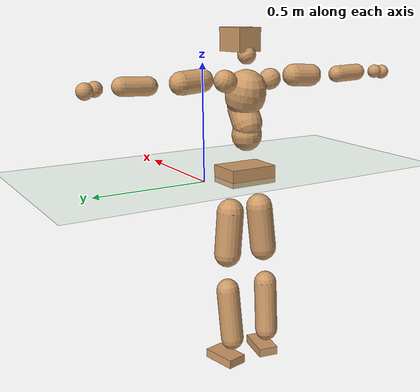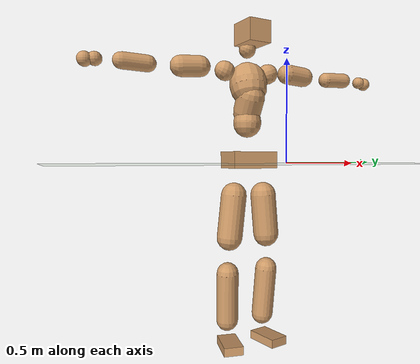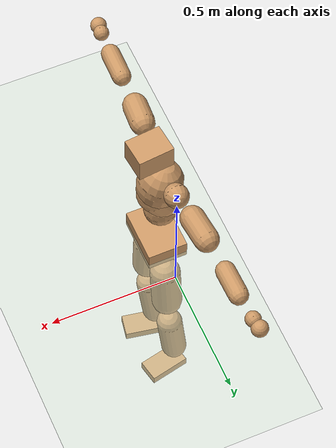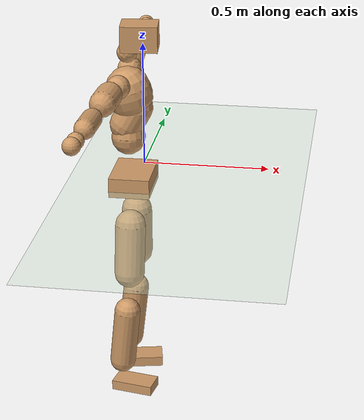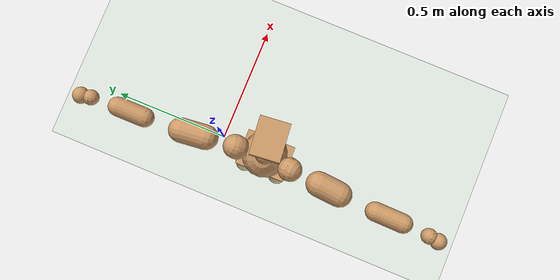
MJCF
<mujoco model="humanoid">
  <compiler coordinate="local" angle="radian"/>
  <default>
    <joint damping="0.0" armature="0.01" stiffness="0.0" limited="true"/>
    <geom conaffinity="1" condim="3" contype="7" margin="0.001" rgba="0.8 0.6 .4 1"/>
  </default>
  <asset>
    <texture type="skybox" builtin="gradient" rgb1=".4 .5 .6" rgb2="0 0 0" width="100" height="100"/>
    <texture builtin="flat" height="1278" mark="cross" markrgb="1 1 1" name="texgeom" random="0.01" rgb1="0.8 0.6 0.4" rgb2="0.8 0.6 0.4" type="cube" width="127"/>
    <texture builtin="checker" height="100" name="texplane" rgb1="0 0 0" rgb2="0.8 0.8 0.8" type="2d" width="100"/>
    <material name="MatPlane" reflectance="0.5" shininess="1" specular="1" texrepeat="60 60" texture="texplane"/>
    <material name="geom" texture="texgeom" texuniform="true"/>
  </asset>
  <worldbody>
    <light cutoff="100" diffuse="1 1 1" dir="-0 0 -1.3" directional="true" exponent="1" pos="0 0 1.3" specular=".1 .1 .1"/>
    <geom conaffinity="1" condim="3" name="floor" pos="0 0 0" rgba="0.8 0.9 0.8 1" size="100 100 .2" type="plane" material="MatPlane"/>
    <body name="Pelvis" pos="-0.0028 -0.1979 0.0256">
      <freejoint name="Pelvis"/>
      <geom type="box" contype="1" conaffinity="1" density="5359.37536" pos="-0.0056 -0.0000 -0.0122" size="0.0788 0.1087 0.0383" quat="1.0000 0.0000 0.0000 0.0031" name="Pelvis"/>
      <body name="L_Hip" pos="-0.0081 0.0693 -0.0875">
        <joint name="L_Hip_x" type="hinge" pos="0 0 0" axis="1 0 0" stiffness="1600" damping="160" armature="0.02" range="-180.0000 180.0000"/>
        <joint name="L_Hip_y" type="hinge" pos="0 0 0" axis="0 1 0" stiffness="1600" damping="160" armature="0.02" range="-180.0000 180.0000"/>
        <joint name="L_Hip_z" type="hinge" pos="0 0 0" axis="0 0 1" stiffness="1600" damping="160" armature="0.02" range="-180.0000 180.0000"/>
        <geom type="capsule" contype="1" conaffinity="1" density="2040.816327" size="0.06" fromto="-0.0011 0.0080 -0.0897 -0.0033 0.0251 -0.2803" name="L_Hip"/>
        <body name="L_Knee" pos="-0.0043 0.0332 -0.3699">
          <joint name="L_Knee_x" type="hinge" pos="0 0 0" axis="1 0 0" stiffness="1600" damping="160" armature="0.02" range="-180.0000 180.0000"/>
          <joint name="L_Knee_y" type="hinge" pos="0 0 0" axis="0 1 0" stiffness="1600" damping="160" armature="0.02" range="-180.0000 180.0000"/>
          <joint name="L_Knee_z" type="hinge" pos="0 0 0" axis="0 0 1" stiffness="1600" damping="160" armature="0.02" range="-180.0000 180.0000"/>
          <geom type="capsule" contype="1" conaffinity="1" density="1234.567901" size="0.0515" fromto="-0.0090 -0.0024 -0.0809 -0.0345 -0.0094 -0.3108" name="L_Knee"/>
          <body name="L_Ankle" pos="-0.0435 -0.0118 -0.3917">
            <joint name="L_Ankle_x" type="hinge" pos="0 0 0" axis="1 0 0" stiffness="1600" damping="160" armature="0.02" range="-180.0000 180.0000"/>
            <joint name="L_Ankle_y" type="hinge" pos="0 0 0" axis="0 1 0" stiffness="1600" damping="160" armature="0.02" range="-180.0000 180.0000"/>
            <joint name="L_Ankle_z" type="hinge" pos="0 0 0" axis="0 0 1" stiffness="1600" damping="160" armature="0.02" range="-180.0000 180.0000"/>
            <geom type="box" contype="1" conaffinity="1" density="999.999993" pos="0.0570 0.0120 -0.0277" size="0.0814 0.0448 0.02" quat="0.9946 0.0000 0.0000 0.1034" name="L_Ankle"/>
            <body name="L_Toe" pos="0.1139 0.0239 -0.0554">
              <joint name="L_Toe_x" type="hinge" pos="0 0 0" axis="1 0 0" stiffness="1000" damping="100" armature="0.02" range="-180.0000 180.0000"/>
              <joint name="L_Toe_y" type="hinge" pos="0 0 0" axis="0 1 0" stiffness="1000" damping="100" armature="0.02" range="-180.0000 180.0000"/>
              <joint name="L_Toe_z" type="hinge" pos="0 0 0" axis="0 0 1" stiffness="1000" damping="100" armature="0.02" range="-180.0000 180.0000"/>
              <geom type="box" contype="1" conaffinity="1" density="8555635.351607" pos="0.0000 0.0000 0.0272" size="0.0009 0.0022 0.001" quat="0.9939 0.0000 0.0000 0.1099" name="L_Toe"/>
            </body>
          </body>
        </body>
      </body>
      <body name="R_Hip" pos="-0.0046 -0.0675 -0.087">
        <joint name="R_Hip_x" type="hinge" pos="0 0 0" axis="1 0 0" stiffness="1600" damping="160" armature="0.02" range="-180.0000 180.0000"/>
        <joint name="R_Hip_y" type="hinge" pos="0 0 0" axis="0 1 0" stiffness="1600" damping="160" armature="0.02" range="-180.0000 180.0000"/>
        <joint name="R_Hip_z" type="hinge" pos="0 0 0" axis="0 0 1" stiffness="1600" damping="160" armature="0.02" range="-180.0000 180.0000"/>
        <geom type="capsule" contype="1" conaffinity="1" density="2040.816327" size="0.0592" fromto="-0.0016 -0.0092 -0.0887 -0.0052 -0.0298 -0.2870" name="R_Hip"/>
        <body name="R_Knee" pos="-0.0068 -0.039 -0.3757">
          <joint name="R_Knee_x" type="hinge" pos="0 0 0" axis="1 0 0" stiffness="1600" damping="160" armature="0.02" range="-180.0000 180.0000"/>
          <joint name="R_Knee_y" type="hinge" pos="0 0 0" axis="0 1 0" stiffness="1600" damping="160" armature="0.02" range="-180.0000 180.0000"/>
          <joint name="R_Knee_z" type="hinge" pos="0 0 0" axis="0 0 1" stiffness="1600" damping="160" armature="0.02" range="-180.0000 180.0000"/>
          <geom type="capsule" contype="1" conaffinity="1" density="1234.567901" size="0.0517" fromto="-0.0086 0.0028 -0.0812 -0.0329 0.0108 -0.3102" name="R_Knee"/>
          <body name="R_Ankle" pos="-0.0415 0.0136 -0.3913">
            <joint name="R_Ankle_x" type="hinge" pos="0 0 0" axis="1 0 0" stiffness="1600" damping="160" armature="0.02" range="-180.0000 180.0000"/>
            <joint name="R_Ankle_y" type="hinge" pos="0 0 0" axis="0 1 0" stiffness="1600" damping="160" armature="0.02" range="-180.0000 180.0000"/>
            <joint name="R_Ankle_z" type="hinge" pos="0 0 0" axis="0 0 1" stiffness="1600" damping="160" armature="0.02" range="-180.0000 180.0000"/>
            <geom type="box" contype="1" conaffinity="1" density="999.999984" pos="0.0586 -0.0108 -0.0238" size="0.0829 0.0447 0.0197" quat="0.9959 0.0000 0.0000 -0.0910" name="R_Ankle"/>
            <body name="R_Toe" pos="0.1172 -0.0216 -0.0475">
              <joint name="R_Toe_x" type="hinge" pos="0 0 0" axis="1 0 0" stiffness="1000" damping="100" armature="0.02" range="-180.0000 180.0000"/>
              <joint name="R_Toe_y" type="hinge" pos="0 0 0" axis="0 1 0" stiffness="1000" damping="100" armature="0.02" range="-180.0000 180.0000"/>
              <joint name="R_Toe_z" type="hinge" pos="0 0 0" axis="0 0 1" stiffness="1000" damping="100" armature="0.02" range="-180.0000 180.0000"/>
              <geom type="box" contype="1" conaffinity="1" density="8566264.520387" pos="0.0000 0.0000 0.0254" size="0.0009 0.0022 0.0011" quat="0.9967 0.0000 0.0000 -0.0814" name="R_Toe"/>
            </body>
          </body>
        </body>
      </body>
      <body name="Torso" pos="-0.0208 -0.002 0.1013">
        <joint name="Torso_x" type="hinge" pos="0 0 0" axis="1 0 0" stiffness="2000" damping="200" armature="0.02" range="-180.0000 180.0000"/>
        <joint name="Torso_y" type="hinge" pos="0 0 0" axis="0 1 0" stiffness="2000" damping="200" armature="0.02" range="-180.0000 180.0000"/>
        <joint name="Torso_z" type="hinge" pos="0 0 0" axis="0 0 1" stiffness="2000" damping="200" armature="0.02" range="-180.0000 180.0000"/>
        <geom type="capsule" contype="1" conaffinity="1" density="2040.816327" size="0.0654" fromto="-0.0009 0.0020 0.0653 -0.0008 0.0017 0.0571" name="Torso"/>
        <body name="Spine" pos="-0.0017 0.0037 0.1224">
          <joint name="Spine_x" type="hinge" pos="0 0 0" axis="1 0 0" stiffness="2000" damping="200" armature="0.02" range="-180.0000 180.0000"/>
          <joint name="Spine_y" type="hinge" pos="0 0 0" axis="0 1 0" stiffness="2000" damping="200" armature="0.02" range="-180.0000 180.0000"/>
          <joint name="Spine_z" type="hinge" pos="0 0 0" axis="0 0 1" stiffness="2000" damping="200" armature="0.02" range="-180.0000 180.0000"/>
          <geom type="capsule" contype="1" conaffinity="1" density="2040.816327" size="0.0652" fromto="0.0315 0.0025 0.0571 -0.0060 -0.0005 -0.0109" name="Spine"/>
          <body name="Chest" pos="0.0255 0.002 0.0461">
            <joint name="Chest_x" type="hinge" pos="0 0 0" axis="1 0 0" stiffness="2000" damping="200" armature="0.02" range="-180.0000 180.0000"/>
            <joint name="Chest_y" type="hinge" pos="0 0 0" axis="0 1 0" stiffness="2000" damping="200" armature="0.02" range="-180.0000 180.0000"/>
            <joint name="Chest_z" type="hinge" pos="0 0 0" axis="0 0 1" stiffness="2000" damping="200" armature="0.02" range="-180.0000 180.0000"/>
            <geom type="capsule" contype="1" conaffinity="1" density="2040.816327" size="0.0874" fromto="-0.0233 -0.0015 0.0842 -0.0159 -0.0010 0.0573" name="Chest"/>
            <body name="Neck" pos="-0.0462 -0.0053 0.2003">
              <joint name="Neck_x" type="hinge" pos="0 0 0" axis="1 0 0" stiffness="1000" damping="100" armature="0.02" range="-180.0000 180.0000"/>
              <joint name="Neck_y" type="hinge" pos="0 0 0" axis="0 1 0" stiffness="1000" damping="100" armature="0.02" range="-180.0000 180.0000"/>
              <joint name="Neck_z" type="hinge" pos="0 0 0" axis="0 0 1" stiffness="1000" damping="100" armature="0.02" range="-180.0000 180.0000"/>
              <geom type="capsule" contype="1" conaffinity="1" density="1000" size="0.0391" fromto="0.0234 0.0014 0.0313 0.0222 0.0013 0.0297" name="Neck"/>
              <body name="Head" pos="0.0456 0.0027 0.061">
                <joint name="Head_x" type="hinge" pos="0 0 0" axis="1 0 0" stiffness="1000" damping="100" armature="0.02" range="-180.0000 180.0000"/>
                <joint name="Head_y" type="hinge" pos="0 0 0" axis="0 1 0" stiffness="1000" damping="100" armature="0.02" range="-180.0000 180.0000"/>
                <joint name="Head_z" type="hinge" pos="0 0 0" axis="0 0 1" stiffness="1000" damping="100" armature="0.02" range="-180.0000 180.0000"/>
                <geom type="box" contype="1" conaffinity="1" density="2250.000051" pos="0.0238 0.0023 0.0315" size="0.0702 0.0561 0.0497" quat="0.9988 0.0000 0.0000 0.0490" name="Head"/>
              </body>
            </body>
            <body name="L_Thorax" pos="-0.0344 0.0684 0.1122">
              <joint name="L_Thorax_x" type="hinge" pos="0 0 0" axis="1 0 0" stiffness="1000" damping="100" armature="0.02" range="-180.0000 180.0000"/>
              <joint name="L_Thorax_y" type="hinge" pos="0 0 0" axis="0 1 0" stiffness="1000" damping="100" armature="0.02" range="-180.0000 180.0000"/>
              <joint name="L_Thorax_z" type="hinge" pos="0 0 0" axis="0 0 1" stiffness="1000" damping="100" armature="0.02" range="-180.0000 180.0000"/>
              <geom type="capsule" contype="1" conaffinity="1" density="1000" size="0.0466" fromto="-0.0033 0.0434 0.0166 -0.0028 0.0364 0.0139" name="L_Thorax"/>
              <body name="L_Shoulder" pos="-0.006 0.0798 0.0306">
                <joint name="L_Shoulder_x" type="hinge" pos="0 0 0" axis="1 0 0" stiffness="1000" damping="100" armature="0.02" range="-720.0000 720.0000"/>
                <joint name="L_Shoulder_y" type="hinge" pos="0 0 0" axis="0 1 0" stiffness="1000" damping="100" armature="0.02" range="-720.0000 720.0000"/>
                <joint name="L_Shoulder_z" type="hinge" pos="0 0 0" axis="0 0 1" stiffness="1000" damping="100" armature="0.02" range="-720.0000 720.0000"/>
                <geom type="capsule" contype="1" conaffinity="1" density="1000" size="0.0474" fromto="-0.0082 0.0768 -0.0041 -0.0188 0.1764 -0.0095" name="L_Shoulder"/>
                <body name="L_Elbow" pos="-0.0271 0.2532 -0.0136">
                  <joint name="L_Elbow_x" type="hinge" pos="0 0 0" axis="1 0 0" stiffness="1000" damping="100" armature="0.02" range="-720.0000 720.0000"/>
                  <joint name="L_Elbow_y" type="hinge" pos="0 0 0" axis="0 1 0" stiffness="1000" damping="100" armature="0.02" range="-720.0000 720.0000"/>
                  <joint name="L_Elbow_z" type="hinge" pos="0 0 0" axis="0 0 1" stiffness="1000" damping="100" armature="0.02" range="-720.0000 720.0000"/>
                  <geom type="capsule" contype="1" conaffinity="1" density="1000" size="0.0371" fromto="-0.0001 0.0671 0.0025 -0.0003 0.1767 0.0066" name="L_Elbow"/>
                  <body name="L_Wrist" pos="-0.0004 0.2438 0.0092">
                    <joint name="L_Wrist_x" type="hinge" pos="0 0 0" axis="1 0 0" stiffness="600" damping="60" armature="0.02" range="-180.0000 180.0000"/>
                    <joint name="L_Wrist_y" type="hinge" pos="0 0 0" axis="0 1 0" stiffness="600" damping="60" armature="0.02" range="-180.0000 180.0000"/>
                    <joint name="L_Wrist_z" type="hinge" pos="0 0 0" axis="0 0 1" stiffness="600" damping="60" armature="0.02" range="-180.0000 180.0000"/>
                    <geom type="capsule" contype="1" conaffinity="1" density="1000" size="0.0299" fromto="-0.0066 0.0392 -0.0049 -0.0069 0.0411 -0.0051" name="L_Wrist"/>
                    <body name="L_Hand" pos="-0.0135 0.0803 -0.01">
                      <joint name="L_Hand_x" type="hinge" pos="0 0 0" axis="1 0 0" stiffness="600" damping="60" armature="0.02" range="-180.0000 180.0000"/>
                      <joint name="L_Hand_y" type="hinge" pos="0 0 0" axis="0 1 0" stiffness="600" damping="60" armature="0.02" range="-180.0000 180.0000"/>
                      <joint name="L_Hand_z" type="hinge" pos="0 0 0" axis="0 0 1" stiffness="600" damping="60" armature="0.02" range="-180.0000 180.0000"/>
                      <geom type="sphere" contype="1" conaffinity="1" density="1000" size="0.0323" pos="0.0000 0.0000 0.0000" name="L_Hand"/>
                    </body>
                  </body>
                </body>
              </body>
            </body>
            <body name="R_Thorax" pos="-0.0369 -0.0704 0.112">
              <joint name="R_Thorax_x" type="hinge" pos="0 0 0" axis="1 0 0" stiffness="1000" damping="100" armature="0.02" range="-180.0000 180.0000"/>
              <joint name="R_Thorax_y" type="hinge" pos="0 0 0" axis="0 1 0" stiffness="1000" damping="100" armature="0.02" range="-180.0000 180.0000"/>
              <joint name="R_Thorax_z" type="hinge" pos="0 0 0" axis="0 0 1" stiffness="1000" damping="100" armature="0.02" range="-180.0000 180.0000"/>
              <geom type="capsule" contype="1" conaffinity="1" density="1000" size="0.0452" fromto="-0.0031 -0.0422 0.0159 -0.0028 -0.0388 0.0146" name="R_Thorax"/>
              <body name="R_Shoulder" pos="-0.0059 -0.081 0.0306">
                <joint name="R_Shoulder_x" type="hinge" pos="0 0 0" axis="1 0 0" stiffness="1000" damping="100" armature="0.02" range="-720.0000 720.0000"/>
                <joint name="R_Shoulder_y" type="hinge" pos="0 0 0" axis="0 1 0" stiffness="1000" damping="100" armature="0.02" range="-720.0000 720.0000"/>
                <joint name="R_Shoulder_z" type="hinge" pos="0 0 0" axis="0 0 1" stiffness="1000" damping="100" armature="0.02" range="-720.0000 720.0000"/>
                <geom type="capsule" contype="1" conaffinity="1" density="1000" size="0.0481" fromto="-0.0061 -0.0777 -0.0038 -0.0128 -0.1645 -0.0080" name="R_Shoulder"/>
                <body name="R_Elbow" pos="-0.0189 -0.2423 -0.0118">
                  <joint name="R_Elbow_x" type="hinge" pos="0 0 0" axis="1 0 0" stiffness="1000" damping="100" armature="0.02" range="-720.0000 720.0000"/>
                  <joint name="R_Elbow_y" type="hinge" pos="0 0 0" axis="0 1 0" stiffness="1000" damping="100" armature="0.02" range="-720.0000 720.0000"/>
                  <joint name="R_Elbow_z" type="hinge" pos="0 0 0" axis="0 0 1" stiffness="1000" damping="100" armature="0.02" range="-720.0000 720.0000"/>
                  <geom type="capsule" contype="1" conaffinity="1" density="1000" size="0.0367" fromto="-0.0011 -0.0667 0.0023 -0.0030 -0.1793 0.0061" name="R_Elbow"/>
                  <body name="R_Wrist" pos="-0.0042 -0.246 0.0084">
                    <joint name="R_Wrist_x" type="hinge" pos="0 0 0" axis="1 0 0" stiffness="600" damping="60" armature="0.02" range="-180.0000 180.0000"/>
                    <joint name="R_Wrist_y" type="hinge" pos="0 0 0" axis="0 1 0" stiffness="600" damping="60" armature="0.02" range="-180.0000 180.0000"/>
                    <joint name="R_Wrist_z" type="hinge" pos="0 0 0" axis="0 0 1" stiffness="600" damping="60" armature="0.02" range="-180.0000 180.0000"/>
                    <geom type="capsule" contype="1" conaffinity="1" density="1000" size="0.03" fromto="-0.0050 -0.0385 -0.0035 -0.0053 -0.0404 -0.0037" name="R_Wrist"/>
                    <body name="R_Hand" pos="-0.0103 -0.0789 -0.0072">
                      <joint name="R_Hand_x" type="hinge" pos="0 0 0" axis="1 0 0" stiffness="600" damping="60" armature="0.02" range="-180.0000 180.0000"/>
                      <joint name="R_Hand_y" type="hinge" pos="0 0 0" axis="0 1 0" stiffness="600" damping="60" armature="0.02" range="-180.0000 180.0000"/>
                      <joint name="R_Hand_z" type="hinge" pos="0 0 0" axis="0 0 1" stiffness="600" damping="60" armature="0.02" range="-180.0000 180.0000"/>
                      <geom type="sphere" contype="1" conaffinity="1" density="1000" size="0.0317" pos="0.0000 0.0000 0.0000" name="R_Hand"/>
                    </body>
                  </body>
                </body>
              </body>
            </body>
          </body>
        </body>
      </body>
    </body>
  </worldbody>
  <actuator>
    <motor name="L_Hip_x" joint="L_Hip_x" gear="500"/>
    <motor name="L_Hip_y" joint="L_Hip_y" gear="500"/>
    <motor name="L_Hip_z" joint="L_Hip_z" gear="500"/>
    <motor name="L_Knee_x" joint="L_Knee_x" gear="500"/>
    <motor name="L_Knee_y" joint="L_Knee_y" gear="500"/>
    <motor name="L_Knee_z" joint="L_Knee_z" gear="500"/>
    <motor name="L_Ankle_x" joint="L_Ankle_x" gear="500"/>
    <motor name="L_Ankle_y" joint="L_Ankle_y" gear="500"/>
    <motor name="L_Ankle_z" joint="L_Ankle_z" gear="500"/>
    <motor name="L_Toe_x" joint="L_Toe_x" gear="500"/>
    <motor name="L_Toe_y" joint="L_Toe_y" gear="500"/>
    <motor name="L_Toe_z" joint="L_Toe_z" gear="500"/>
    <motor name="R_Hip_x" joint="R_Hip_x" gear="500"/>
    <motor name="R_Hip_y" joint="R_Hip_y" gear="500"/>
    <motor name="R_Hip_z" joint="R_Hip_z" gear="500"/>
    <motor name="R_Knee_x" joint="R_Knee_x" gear="500"/>
    <motor name="R_Knee_y" joint="R_Knee_y" gear="500"/>
    <motor name="R_Knee_z" joint="R_Knee_z" gear="500"/>
    <motor name="R_Ankle_x" joint="R_Ankle_x" gear="500"/>
    <motor name="R_Ankle_y" joint="R_Ankle_y" gear="500"/>
    <motor name="R_Ankle_z" joint="R_Ankle_z" gear="500"/>
    <motor name="R_Toe_x" joint="R_Toe_x" gear="500"/>
    <motor name="R_Toe_y" joint="R_Toe_y" gear="500"/>
    <motor name="R_Toe_z" joint="R_Toe_z" gear="500"/>
    <motor name="Torso_x" joint="Torso_x" gear="500"/>
    <motor name="Torso_y" joint="Torso_y" gear="500"/>
    <motor name="Torso_z" joint="Torso_z" gear="500"/>
    <motor name="Spine_x" joint="Spine_x" gear="500"/>
    <motor name="Spine_y" joint="Spine_y" gear="500"/>
    <motor name="Spine_z" joint="Spine_z" gear="500"/>
    <motor name="Chest_x" joint="Chest_x" gear="500"/>
    <motor name="Chest_y" joint="Chest_y" gear="500"/>
    <motor name="Chest_z" joint="Chest_z" gear="500"/>
    <motor name="Neck_x" joint="Neck_x" gear="500"/>
    <motor name="Neck_y" joint="Neck_y" gear="500"/>
    <motor name="Neck_z" joint="Neck_z" gear="500"/>
    <motor name="Head_x" joint="Head_x" gear="500"/>
    <motor name="Head_y" joint="Head_y" gear="500"/>
    <motor name="Head_z" joint="Head_z" gear="500"/>
    <motor name="L_Thorax_x" joint="L_Thorax_x" gear="500"/>
    <motor name="L_Thorax_y" joint="L_Thorax_y" gear="500"/>
    <motor name="L_Thorax_z" joint="L_Thorax_z" gear="500"/>
    <motor name="L_Shoulder_x" joint="L_Shoulder_x" gear="500"/>
    <motor name="L_Shoulder_y" joint="L_Shoulder_y" gear="500"/>
    <motor name="L_Shoulder_z" joint="L_Shoulder_z" gear="500"/>
    <motor name="L_Elbow_x" joint="L_Elbow_x" gear="500"/>
    <motor name="L_Elbow_y" joint="L_Elbow_y" gear="500"/>
    <motor name="L_Elbow_z" joint="L_Elbow_z" gear="500"/>
    <motor name="L_Wrist_x" joint="L_Wrist_x" gear="500"/>
    <motor name="L_Wrist_y" joint="L_Wrist_y" gear="500"/>
    <motor name="L_Wrist_z" joint="L_Wrist_z" gear="500"/>
    <motor name="L_Hand_x" joint="L_Hand_x" gear="500"/>
    <motor name="L_Hand_y" joint="L_Hand_y" gear="500"/>
    <motor name="L_Hand_z" joint="L_Hand_z" gear="500"/>
    <motor name="R_Thorax_x" joint="R_Thorax_x" gear="500"/>
    <motor name="R_Thorax_y" joint="R_Thorax_y" gear="500"/>
    <motor name="R_Thorax_z" joint="R_Thorax_z" gear="500"/>
    <motor name="R_Shoulder_x" joint="R_Shoulder_x" gear="500"/>
    <motor name="R_Shoulder_y" joint="R_Shoulder_y" gear="500"/>
    <motor name="R_Shoulder_z" joint="R_Shoulder_z" gear="500"/>
    <motor name="R_Elbow_x" joint="R_Elbow_x" gear="500"/>
    <motor name="R_Elbow_y" joint="R_Elbow_y" gear="500"/>
    <motor name="R_Elbow_z" joint="R_Elbow_z" gear="500"/>
    <motor name="R_Wrist_x" joint="R_Wrist_x" gear="500"/>
    <motor name="R_Wrist_y" joint="R_Wrist_y" gear="500"/>
    <motor name="R_Wrist_z" joint="R_Wrist_z" gear="500"/>
    <motor name="R_Hand_x" joint="R_Hand_x" gear="500"/>
    <motor name="R_Hand_y" joint="R_Hand_y" gear="500"/>
    <motor name="R_Hand_z" joint="R_Hand_z" gear="500"/>
  </actuator>
  <contact>
    <exclude body1="Torso" body2="Chest"/>
    <exclude body1="Head" body2="Chest"/>
    <exclude body1="R_Knee" body2="R_Toe"/>
    <exclude body1="R_Knee" body2="L_Ankle"/>
    <exclude body1="R_Knee" body2="L_Toe"/>
    <exclude body1="L_Knee" body2="L_Toe"/>
    <exclude body1="L_Knee" body2="R_Ankle"/>
    <exclude body1="L_Knee" body2="R_Toe"/>
    <exclude body1="L_Shoulder" body2="Chest"/>
    <exclude body1="R_Shoulder" body2="Chest"/>
  </contact>
  <sensor/>
  <size njmax="700" nconmax="700"/>
</mujoco>
